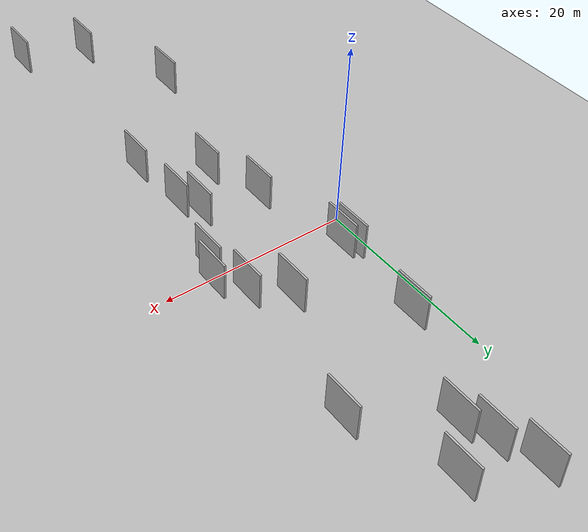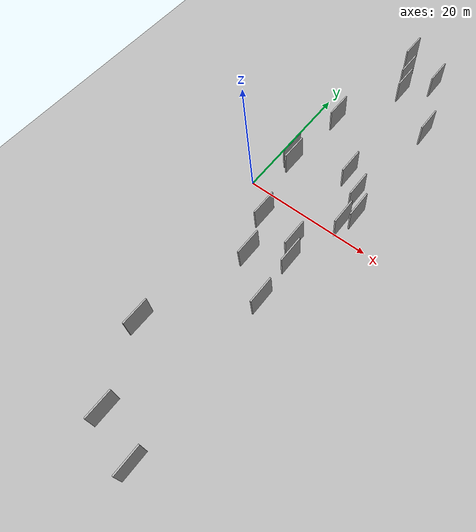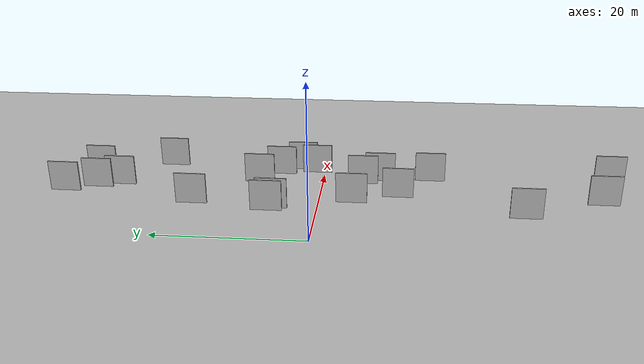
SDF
<?xml version="1.0" encoding="utf-8"?>

<sdf version="1.6">

   <world name="default">

      <gui fullscreen="0">

         <camera name="user_camera">

            <pose>-15 0 4.57585 0 0 0</pose>

            <view_controller>orbit</view_controller>

         </camera>

      </gui>

      <scene>

         <sky>

           <clouds>

             <speed>12</speed>

           </clouds>

         </sky>

         <ambient>0.4 0.4 0.4 1</ambient>

         <background>0.7 0.7 0.7 1</background>

         <shadows>1</shadows>

      </scene>

      <gravity>0 0 -9.8066</gravity>

      <magnetic_field>6e-06 2.3e-05 -4.2e-05</magnetic_field>

      <physics default="0" name="default_physics" type="ode">

         <ode>

            <solver>

               <type>quick</type>

               <iters>10</iters>

               <sor>1.0</sor>

               <use_dynamic_moi_rescaling>0</use_dynamic_moi_rescaling>

            </solver>

            <constraints>

               <cfm>0</cfm>

               <erp>0.2</erp>

               <contact_max_correcting_vel>100</contact_max_correcting_vel>

               <contact_surface_layer>0.001</contact_surface_layer>

            </constraints>

         </ode>

         <max_step_size>0.004</max_step_size>

         <real_time_factor>1</real_time_factor>

         <real_time_update_rate>250</real_time_update_rate>

      </physics>

      <light name="sun" type="directional">

         <cast_shadows>1</cast_shadows>

         <pose>0 0 10 0 0 0</pose>

         <diffuse>0.8 0.8 0.8 1</diffuse>

         <specular>0.2 0.2 0.2 1</specular>

         <attenuation>

            <range>1000</range>

            <constant>0.9</constant>

            <linear>0.01</linear>

            <quadratic>0.001</quadratic>

         </attenuation>

         <direction>-0.5 0.1 -0.9</direction>

      </light>

      <include>

         <name>ground_plane_1</name>

         <uri>model://HANNAS_ground_plane</uri>

         <pose>0 0 0  0 0 0</pose>

      </include>

      <include>

         <name>ground_plane_2</name>

         <uri>model://HANNAS_ground_plane</uri>

         <pose>100 0 0  0 0 0</pose>

      </include>

      <model name="HANNAS_wall_1">

         <static>1</static>

         <pose frame="">7.8780 -36.6778 2.5 0.000000 0.000000 1.570796</pose>

         <link name="link">

            <pose frame="">0 0 2.00 0 0 0</pose>

            <collision name="collision">

               <geometry>

                  <box>

                     <size>4.00 0.2 4.00</size>

                  </box>

               </geometry>

               <max_contacts>10</max_contacts>

               <surface>

                  <contact>

                     <ode/>

                  </contact>

                  <bounce/>

                  <friction>

                     <torsional>

                        <ode/>

                     </torsional>

                     <ode/>

                  </friction>

               </surface>

            </collision>

            <visual name="visual">

               <cast_shadows>0</cast_shadows>

               <geometry>

                  <box>

                     <size>4.00 0.2 4.00</size>

                  </box>

               </geometry>

               <material>

                  <script>

                     <uri>model://HANNAS_wall/materials/scripts</uri>

                     <uri>model://HANNAS_wall/materials/textures</uri>

                     <name>vrc/HANNAS_wall</name>

                  </script>

               </material>

            </visual>

            <self_collide>0</self_collide>

            <enable_wind>0</enable_wind>

            <kinematic>0</kinematic>

         </link>

      </model>

      <model name="HANNAS_wall_2">

         <static>1</static>

         <pose frame="">8.4785 29.3045 2.5 0.000000 0.000000 1.570796</pose>

         <link name="link">

            <pose frame="">0 0 2.00 0 0 0</pose>

            <collision name="collision">

               <geometry>

                  <box>

                     <size>4.00 0.2 4.00</size>

                  </box>

               </geometry>

               <max_contacts>10</max_contacts>

               <surface>

                  <contact>

                     <ode/>

                  </contact>

                  <bounce/>

                  <friction>

                     <torsional>

                        <ode/>

                     </torsional>

                     <ode/>

                  </friction>

               </surface>

            </collision>

            <visual name="visual">

               <cast_shadows>0</cast_shadows>

               <geometry>

                  <box>

                     <size>4.00 0.2 4.00</size>

                  </box>

               </geometry>

               <material>

                  <script>

                     <uri>model://HANNAS_wall/materials/scripts</uri>

                     <uri>model://HANNAS_wall/materials/textures</uri>

                     <name>vrc/HANNAS_wall</name>

                  </script>

               </material>

            </visual>

            <self_collide>0</self_collide>

            <enable_wind>0</enable_wind>

            <kinematic>0</kinematic>

         </link>

      </model>

      <model name="HANNAS_wall_3">

         <static>1</static>

         <pose frame="">3.3536 -26.2897 2.5 0.000000 0.000000 1.570796</pose>

         <link name="link">

            <pose frame="">0 0 2.00 0 0 0</pose>

            <collision name="collision">

               <geometry>

                  <box>

                     <size>4.00 0.2 4.00</size>

                  </box>

               </geometry>

               <max_contacts>10</max_contacts>

               <surface>

                  <contact>

                     <ode/>

                  </contact>

                  <bounce/>

                  <friction>

                     <torsional>

                        <ode/>

                     </torsional>

                     <ode/>

                  </friction>

               </surface>

            </collision>

            <visual name="visual">

               <cast_shadows>0</cast_shadows>

               <geometry>

                  <box>

                     <size>4.00 0.2 4.00</size>

                  </box>

               </geometry>

               <material>

                  <script>

                     <uri>model://HANNAS_wall/materials/scripts</uri>

                     <uri>model://HANNAS_wall/materials/textures</uri>

                     <name>vrc/HANNAS_wall</name>

                  </script>

               </material>

            </visual>

            <self_collide>0</self_collide>

            <enable_wind>0</enable_wind>

            <kinematic>0</kinematic>

         </link>

      </model>

      <model name="HANNAS_wall_4">

         <static>1</static>

         <pose frame="">14.6330 -38.9735 2.5 0.000000 0.000000 1.570796</pose>

         <link name="link">

            <pose frame="">0 0 2.00 0 0 0</pose>

            <collision name="collision">

               <geometry>

                  <box>

                     <size>4.00 0.2 4.00</size>

                  </box>

               </geometry>

               <max_contacts>10</max_contacts>

               <surface>

                  <contact>

                     <ode/>

                  </contact>

                  <bounce/>

                  <friction>

                     <torsional>

                        <ode/>

                     </torsional>

                     <ode/>

                  </friction>

               </surface>

            </collision>

            <visual name="visual">

               <cast_shadows>0</cast_shadows>

               <geometry>

                  <box>

                     <size>4.00 0.2 4.00</size>

                  </box>

               </geometry>

               <material>

                  <script>

                     <uri>model://HANNAS_wall/materials/scripts</uri>

                     <uri>model://HANNAS_wall/materials/textures</uri>

                     <name>vrc/HANNAS_wall</name>

                  </script>

               </material>

            </visual>

            <self_collide>0</self_collide>

            <enable_wind>0</enable_wind>

            <kinematic>0</kinematic>

         </link>

      </model>

      <model name="HANNAS_wall_5">

         <static>1</static>

         <pose frame="">9.5337 26.5299 2.5 0.000000 0.000000 1.570796</pose>

         <link name="link">

            <pose frame="">0 0 2.00 0 0 0</pose>

            <collision name="collision">

               <geometry>

                  <box>

                     <size>4.00 0.2 4.00</size>

                  </box>

               </geometry>

               <max_contacts>10</max_contacts>

               <surface>

                  <contact>

                     <ode/>

                  </contact>

                  <bounce/>

                  <friction>

                     <torsional>

                        <ode/>

                     </torsional>

                     <ode/>

                  </friction>

               </surface>

            </collision>

            <visual name="visual">

               <cast_shadows>0</cast_shadows>

               <geometry>

                  <box>

                     <size>4.00 0.2 4.00</size>

                  </box>

               </geometry>

               <material>

                  <script>

                     <uri>model://HANNAS_wall/materials/scripts</uri>

                     <uri>model://HANNAS_wall/materials/textures</uri>

                     <name>vrc/HANNAS_wall</name>

                  </script>

               </material>

            </visual>

            <self_collide>0</self_collide>

            <enable_wind>0</enable_wind>

            <kinematic>0</kinematic>

         </link>

      </model>

      <model name="HANNAS_wall_6">

         <static>1</static>

         <pose frame="">15.6037 0.5643 2.5 0.000000 0.000000 1.570796</pose>

         <link name="link">

            <pose frame="">0 0 2.00 0 0 0</pose>

            <collision name="collision">

               <geometry>

                  <box>

                     <size>4.00 0.2 4.00</size>

                  </box>

               </geometry>

               <max_contacts>10</max_contacts>

               <surface>

                  <contact>

                     <ode/>

                  </contact>

                  <bounce/>

                  <friction>

                     <torsional>

                        <ode/>

                     </torsional>

                     <ode/>

                  </friction>

               </surface>

            </collision>

            <visual name="visual">

               <cast_shadows>0</cast_shadows>

               <geometry>

                  <box>

                     <size>4.00 0.2 4.00</size>

                  </box>

               </geometry>

               <material>

                  <script>

                     <uri>model://HANNAS_wall/materials/scripts</uri>

                     <uri>model://HANNAS_wall/materials/textures</uri>

                     <name>vrc/HANNAS_wall</name>

                  </script>

               </material>

            </visual>

            <self_collide>0</self_collide>

            <enable_wind>0</enable_wind>

            <kinematic>0</kinematic>

         </link>

      </model>

      <model name="HANNAS_wall_7">

         <static>1</static>

         <pose frame="">14.7422 5.4125 2.5 0.000000 0.000000 1.570796</pose>

         <link name="link">

            <pose frame="">0 0 2.00 0 0 0</pose>

            <collision name="collision">

               <geometry>

                  <box>

                     <size>4.00 0.2 4.00</size>

                  </box>

               </geometry>

               <max_contacts>10</max_contacts>

               <surface>

                  <contact>

                     <ode/>

                  </contact>

                  <bounce/>

                  <friction>

                     <torsional>

                        <ode/>

                     </torsional>

                     <ode/>

                  </friction>

               </surface>

            </collision>

            <visual name="visual">

               <cast_shadows>0</cast_shadows>

               <geometry>

                  <box>

                     <size>4.00 0.2 4.00</size>

                  </box>

               </geometry>

               <material>

                  <script>

                     <uri>model://HANNAS_wall/materials/scripts</uri>

                     <uri>model://HANNAS_wall/materials/textures</uri>

                     <name>vrc/HANNAS_wall</name>

                  </script>

               </material>

            </visual>

            <self_collide>0</self_collide>

            <enable_wind>0</enable_wind>

            <kinematic>0</kinematic>

         </link>

      </model>

      <model name="HANNAS_wall_8">

         <static>1</static>

         <pose frame="">13.8355 -14.9823 2.5 0.000000 0.000000 1.570796</pose>

         <link name="link">

            <pose frame="">0 0 2.00 0 0 0</pose>

            <collision name="collision">

               <geometry>

                  <box>

                     <size>4.00 0.2 4.00</size>

                  </box>

               </geometry>

               <max_contacts>10</max_contacts>

               <surface>

                  <contact>

                     <ode/>

                  </contact>

                  <bounce/>

                  <friction>

                     <torsional>

                        <ode/>

                     </torsional>

                     <ode/>

                  </friction>

               </surface>

            </collision>

            <visual name="visual">

               <cast_shadows>0</cast_shadows>

               <geometry>

                  <box>

                     <size>4.00 0.2 4.00</size>

                  </box>

               </geometry>

               <material>

                  <script>

                     <uri>model://HANNAS_wall/materials/scripts</uri>

                     <uri>model://HANNAS_wall/materials/textures</uri>

                     <name>vrc/HANNAS_wall</name>

                  </script>

               </material>

            </visual>

            <self_collide>0</self_collide>

            <enable_wind>0</enable_wind>

            <kinematic>0</kinematic>

         </link>

      </model>

      <model name="HANNAS_wall_9">

         <static>1</static>

         <pose frame="">4.5063 15.5666 2.5 0.000000 0.000000 1.570796</pose>

         <link name="link">

            <pose frame="">0 0 2.00 0 0 0</pose>

            <collision name="collision">

               <geometry>

                  <box>

                     <size>4.00 0.2 4.00</size>

                  </box>

               </geometry>

               <max_contacts>10</max_contacts>

               <surface>

                  <contact>

                     <ode/>

                  </contact>

                  <bounce/>

                  <friction>

                     <torsional>

                        <ode/>

                     </torsional>

                     <ode/>

                  </friction>

               </surface>

            </collision>

            <visual name="visual">

               <cast_shadows>0</cast_shadows>

               <geometry>

                  <box>

                     <size>4.00 0.2 4.00</size>

                  </box>

               </geometry>

               <material>

                  <script>

                     <uri>model://HANNAS_wall/materials/scripts</uri>

                     <uri>model://HANNAS_wall/materials/textures</uri>

                     <name>vrc/HANNAS_wall</name>

                  </script>

               </material>

            </visual>

            <self_collide>0</self_collide>

            <enable_wind>0</enable_wind>

            <kinematic>0</kinematic>

         </link>

      </model>

      <model name="HANNAS_wall_10">

         <static>1</static>

         <pose frame="">13.3845 -8.2456 2.5 0.000000 0.000000 1.570796</pose>

         <link name="link">

            <pose frame="">0 0 2.00 0 0 0</pose>

            <collision name="collision">

               <geometry>

                  <box>

                     <size>4.00 0.2 4.00</size>

                  </box>

               </geometry>

               <max_contacts>10</max_contacts>

               <surface>

                  <contact>

                     <ode/>

                  </contact>

                  <bounce/>

                  <friction>

                     <torsional>

                        <ode/>

                     </torsional>

                     <ode/>

                  </friction>

               </surface>

            </collision>

            <visual name="visual">

               <cast_shadows>0</cast_shadows>

               <geometry>

                  <box>

                     <size>4.00 0.2 4.00</size>

                  </box>

               </geometry>

               <material>

                  <script>

                     <uri>model://HANNAS_wall/materials/scripts</uri>

                     <uri>model://HANNAS_wall/materials/textures</uri>

                     <name>vrc/HANNAS_wall</name>

                  </script>

               </material>

            </visual>

            <self_collide>0</self_collide>

            <enable_wind>0</enable_wind>

            <kinematic>0</kinematic>

         </link>

      </model>

      <model name="HANNAS_wall_11">

         <static>1</static>

         <pose frame="">8.2481 -10.6515 2.5 0.000000 0.000000 1.570796</pose>

         <link name="link">

            <pose frame="">0 0 2.00 0 0 0</pose>

            <collision name="collision">

               <geometry>

                  <box>

                     <size>4.00 0.2 4.00</size>

                  </box>

               </geometry>

               <max_contacts>10</max_contacts>

               <surface>

                  <contact>

                     <ode/>

                  </contact>

                  <bounce/>

                  <friction>

                     <torsional>

                        <ode/>

                     </torsional>

                     <ode/>

                  </friction>

               </surface>

            </collision>

            <visual name="visual">

               <cast_shadows>0</cast_shadows>

               <geometry>

                  <box>

                     <size>4.00 0.2 4.00</size>

                  </box>

               </geometry>

               <material>

                  <script>

                     <uri>model://HANNAS_wall/materials/scripts</uri>

                     <uri>model://HANNAS_wall/materials/textures</uri>

                     <name>vrc/HANNAS_wall</name>

                  </script>

               </material>

            </visual>

            <self_collide>0</self_collide>

            <enable_wind>0</enable_wind>

            <kinematic>0</kinematic>

         </link>

      </model>

      <model name="HANNAS_wall_12">

         <static>1</static>

         <pose frame="">6.9784 33.1511 2.5 0.000000 0.000000 1.570796</pose>

         <link name="link">

            <pose frame="">0 0 2.00 0 0 0</pose>

            <collision name="collision">

               <geometry>

                  <box>

                     <size>4.00 0.2 4.00</size>

                  </box>

               </geometry>

               <max_contacts>10</max_contacts>

               <surface>

                  <contact>

                     <ode/>

                  </contact>

                  <bounce/>

                  <friction>

                     <torsional>

                        <ode/>

                     </torsional>

                     <ode/>

                  </friction>

               </surface>

            </collision>

            <visual name="visual">

               <cast_shadows>0</cast_shadows>

               <geometry>

                  <box>

                     <size>4.00 0.2 4.00</size>

                  </box>

               </geometry>

               <material>

                  <script>

                     <uri>model://HANNAS_wall/materials/scripts</uri>

                     <uri>model://HANNAS_wall/materials/textures</uri>

                     <name>vrc/HANNAS_wall</name>

                  </script>

               </material>

            </visual>

            <self_collide>0</self_collide>

            <enable_wind>0</enable_wind>

            <kinematic>0</kinematic>

         </link>

      </model>

      <model name="HANNAS_wall_13">

         <static>1</static>

         <pose frame="">12.2420 -5.9573 2.5 0.000000 0.000000 1.570796</pose>

         <link name="link">

            <pose frame="">0 0 2.00 0 0 0</pose>

            <collision name="collision">

               <geometry>

                  <box>

                     <size>4.00 0.2 4.00</size>

                  </box>

               </geometry>

               <max_contacts>10</max_contacts>

               <surface>

                  <contact>

                     <ode/>

                  </contact>

                  <bounce/>

                  <friction>

                     <torsional>

                        <ode/>

                     </torsional>

                     <ode/>

                  </friction>

               </surface>

            </collision>

            <visual name="visual">

               <cast_shadows>0</cast_shadows>

               <geometry>

                  <box>

                     <size>4.00 0.2 4.00</size>

                  </box>

               </geometry>

               <material>

                  <script>

                     <uri>model://HANNAS_wall/materials/scripts</uri>

                     <uri>model://HANNAS_wall/materials/textures</uri>

                     <name>vrc/HANNAS_wall</name>

                  </script>

               </material>

            </visual>

            <self_collide>0</self_collide>

            <enable_wind>0</enable_wind>

            <kinematic>0</kinematic>

         </link>

      </model>

      <model name="HANNAS_wall_14">

         <static>1</static>

         <pose frame="">11.7514 8.0098 2.5 0.000000 0.000000 1.570796</pose>

         <link name="link">

            <pose frame="">0 0 2.00 0 0 0</pose>

            <collision name="collision">

               <geometry>

                  <box>

                     <size>4.00 0.2 4.00</size>

                  </box>

               </geometry>

               <max_contacts>10</max_contacts>

               <surface>

                  <contact>

                     <ode/>

                  </contact>

                  <bounce/>

                  <friction>

                     <torsional>

                        <ode/>

                     </torsional>

                     <ode/>

                  </friction>

               </surface>

            </collision>

            <visual name="visual">

               <cast_shadows>0</cast_shadows>

               <geometry>

                  <box>

                     <size>4.00 0.2 4.00</size>

                  </box>

               </geometry>

               <material>

                  <script>

                     <uri>model://HANNAS_wall/materials/scripts</uri>

                     <uri>model://HANNAS_wall/materials/textures</uri>

                     <name>vrc/HANNAS_wall</name>

                  </script>

               </material>

            </visual>

            <self_collide>0</self_collide>

            <enable_wind>0</enable_wind>

            <kinematic>0</kinematic>

         </link>

      </model>

      <model name="HANNAS_wall_15">

         <static>1</static>

         <pose frame="">16.7271 21.1465 2.5 0.000000 0.000000 1.570796</pose>

         <link name="link">

            <pose frame="">0 0 2.00 0 0 0</pose>

            <collision name="collision">

               <geometry>

                  <box>

                     <size>4.00 0.2 4.00</size>

                  </box>

               </geometry>

               <max_contacts>10</max_contacts>

               <surface>

                  <contact>

                     <ode/>

                  </contact>

                  <bounce/>

                  <friction>

                     <torsional>

                        <ode/>

                     </torsional>

                     <ode/>

                  </friction>

               </surface>

            </collision>

            <visual name="visual">

               <cast_shadows>0</cast_shadows>

               <geometry>

                  <box>

                     <size>4.00 0.2 4.00</size>

                  </box>

               </geometry>

               <material>

                  <script>

                     <uri>model://HANNAS_wall/materials/scripts</uri>

                     <uri>model://HANNAS_wall/materials/textures</uri>

                     <name>vrc/HANNAS_wall</name>

                  </script>

               </material>

            </visual>

            <self_collide>0</self_collide>

            <enable_wind>0</enable_wind>

            <kinematic>0</kinematic>

         </link>

      </model>

      <model name="HANNAS_wall_16">

         <static>1</static>

         <pose frame="">13.0646 30.4530 2.5 0.000000 0.000000 1.570796</pose>

         <link name="link">

            <pose frame="">0 0 2.00 0 0 0</pose>

            <collision name="collision">

               <geometry>

                  <box>

                     <size>4.00 0.2 4.00</size>

                  </box>

               </geometry>

               <max_contacts>10</max_contacts>

               <surface>

                  <contact>

                     <ode/>

                  </contact>

                  <bounce/>

                  <friction>

                     <torsional>

                        <ode/>

                     </torsional>

                     <ode/>

                  </friction>

               </surface>

            </collision>

            <visual name="visual">

               <cast_shadows>0</cast_shadows>

               <geometry>

                  <box>

                     <size>4.00 0.2 4.00</size>

                  </box>

               </geometry>

               <material>

                  <script>

                     <uri>model://HANNAS_wall/materials/scripts</uri>

                     <uri>model://HANNAS_wall/materials/textures</uri>

                     <name>vrc/HANNAS_wall</name>

                  </script>

               </material>

            </visual>

            <self_collide>0</self_collide>

            <enable_wind>0</enable_wind>

            <kinematic>0</kinematic>

         </link>

      </model>

      <model name="HANNAS_wall_17">

         <static>1</static>

         <pose frame="">3.1491 5.7228 2.5 0.000000 0.000000 1.570796</pose>

         <link name="link">

            <pose frame="">0 0 2.00 0 0 0</pose>

            <collision name="collision">

               <geometry>

                  <box>

                     <size>4.00 0.2 4.00</size>

                  </box>

               </geometry>

               <max_contacts>10</max_contacts>

               <surface>

                  <contact>

                     <ode/>

                  </contact>

                  <bounce/>

                  <friction>

                     <torsional>

                        <ode/>

                     </torsional>

                     <ode/>

                  </friction>

               </surface>

            </collision>

            <visual name="visual">

               <cast_shadows>0</cast_shadows>

               <geometry>

                  <box>

                     <size>4.00 0.2 4.00</size>

                  </box>

               </geometry>

               <material>

                  <script>

                     <uri>model://HANNAS_wall/materials/scripts</uri>

                     <uri>model://HANNAS_wall/materials/textures</uri>

                     <name>vrc/HANNAS_wall</name>

                  </script>

               </material>

            </visual>

            <self_collide>0</self_collide>

            <enable_wind>0</enable_wind>

            <kinematic>0</kinematic>

         </link>

      </model>

      <model name="HANNAS_wall_18">

         <static>1</static>

         <pose frame="">16.6024 2.6904 2.5 0.000000 0.000000 1.570796</pose>

         <link name="link">

            <pose frame="">0 0 2.00 0 0 0</pose>

            <collision name="collision">

               <geometry>

                  <box>

                     <size>4.00 0.2 4.00</size>

                  </box>

               </geometry>

               <max_contacts>10</max_contacts>

               <surface>

                  <contact>

                     <ode/>

                  </contact>

                  <bounce/>

                  <friction>

                     <torsional>

                        <ode/>

                     </torsional>

                     <ode/>

                  </friction>

               </surface>

            </collision>

            <visual name="visual">

               <cast_shadows>0</cast_shadows>

               <geometry>

                  <box>

                     <size>4.00 0.2 4.00</size>

                  </box>

               </geometry>

               <material>

                  <script>

                     <uri>model://HANNAS_wall/materials/scripts</uri>

                     <uri>model://HANNAS_wall/materials/textures</uri>

                     <name>vrc/HANNAS_wall</name>

                  </script>

               </material>

            </visual>

            <self_collide>0</self_collide>

            <enable_wind>0</enable_wind>

            <kinematic>0</kinematic>

         </link>

      </model>

      <model name="HANNAS_wall_19">

         <static>1</static>

         <pose frame="">3.8780 5.1756 2.5 0.000000 0.000000 1.570796</pose>

         <link name="link">

            <pose frame="">0 0 2.00 0 0 0</pose>

            <collision name="collision">

               <geometry>

                  <box>

                     <size>4.00 0.2 4.00</size>

                  </box>

               </geometry>

               <max_contacts>10</max_contacts>

               <surface>

                  <contact>

                     <ode/>

                  </contact>

                  <bounce/>

                  <friction>

                     <torsional>

                        <ode/>

                     </torsional>

                     <ode/>

                  </friction>

               </surface>

            </collision>

            <visual name="visual">

               <cast_shadows>0</cast_shadows>

               <geometry>

                  <box>

                     <size>4.00 0.2 4.00</size>

                  </box>

               </geometry>

               <material>

                  <script>

                     <uri>model://HANNAS_wall/materials/scripts</uri>

                     <uri>model://HANNAS_wall/materials/textures</uri>

                     <name>vrc/HANNAS_wall</name>

                  </script>

               </material>

            </visual>

            <self_collide>0</self_collide>

            <enable_wind>0</enable_wind>

            <kinematic>0</kinematic>

         </link>

      </model>

      <model name="HANNAS_wall_20">

         <static>1</static>

         <pose frame="">6.1938 -4.7537 2.5 0.000000 0.000000 1.570796</pose>

         <link name="link">

            <pose frame="">0 0 2.00 0 0 0</pose>

            <collision name="collision">

               <geometry>

                  <box>

                     <size>4.00 0.2 4.00</size>

                  </box>

               </geometry>

               <max_contacts>10</max_contacts>

               <surface>

                  <contact>

                     <ode/>

                  </contact>

                  <bounce/>

                  <friction>

                     <torsional>

                        <ode/>

                     </torsional>

                     <ode/>

                  </friction>

               </surface>

            </collision>

            <visual name="visual">

               <cast_shadows>0</cast_shadows>

               <geometry>

                  <box>

                     <size>4.00 0.2 4.00</size>

                  </box>

               </geometry>

               <material>

                  <script>

                     <uri>model://HANNAS_wall/materials/scripts</uri>

                     <uri>model://HANNAS_wall/materials/textures</uri>

                     <name>vrc/HANNAS_wall</name>

                  </script>

               </material>

            </visual>

            <self_collide>0</self_collide>

            <enable_wind>0</enable_wind>

            <kinematic>0</kinematic>

         </link>

      </model>

   </world>

</sdf>

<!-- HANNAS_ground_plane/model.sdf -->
<sdf version="1.4">
<model name="HANNAS_ground_plane">
  <static>true</static>
    <link name="link">
      <collision name="collision">
        <geometry>
          <plane>
            <normal>0 0 1</normal>
            <size>1000 1000</size>
          </plane>
        </geometry>
        <surface>
          <friction>
            <ode>
              <mu>100</mu>
              <mu2>50</mu2>
            </ode>
          </friction>
        </surface>
      </collision>
      <visual name="visual">
        <cast_shadows>false</cast_shadows>
        <geometry>
          <plane>
            <normal>0 0 1</normal>
            <size>1000 1000</size>
          </plane>
        </geometry>
        <material>
          <script>
            <uri>model://HANNAS_ground_plane/materials/scripts/HANNAS_ground_plane.material</uri>
	    <uri>model://HANNAS_ground_plane/materials/textures</uri>
            <name>HANNASGroundPlane/Image</name>
          </script>
        </material>
      </visual>
    </link>
  </model>
</sdf>
